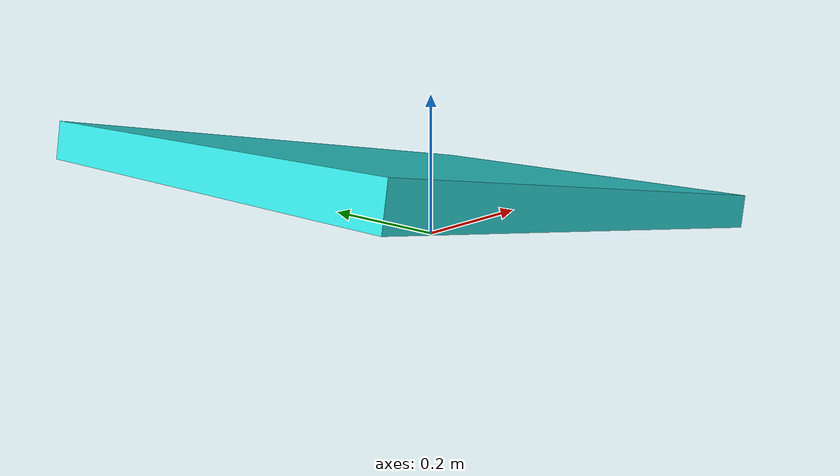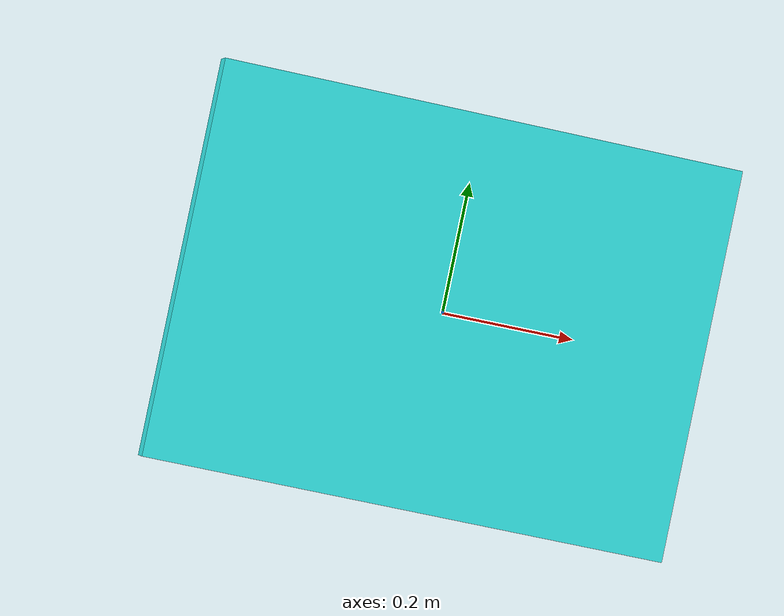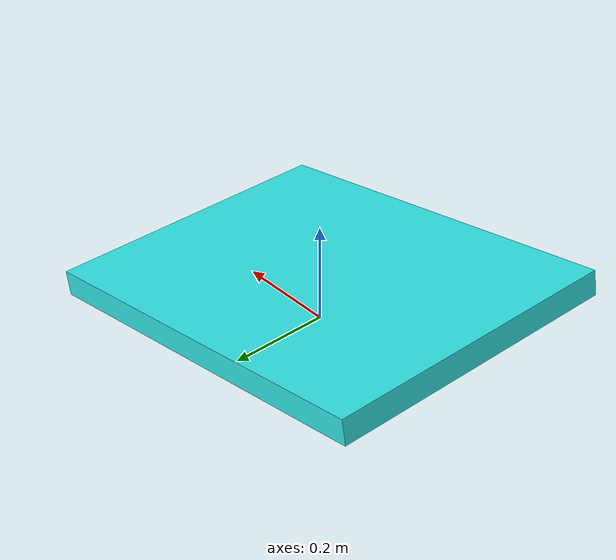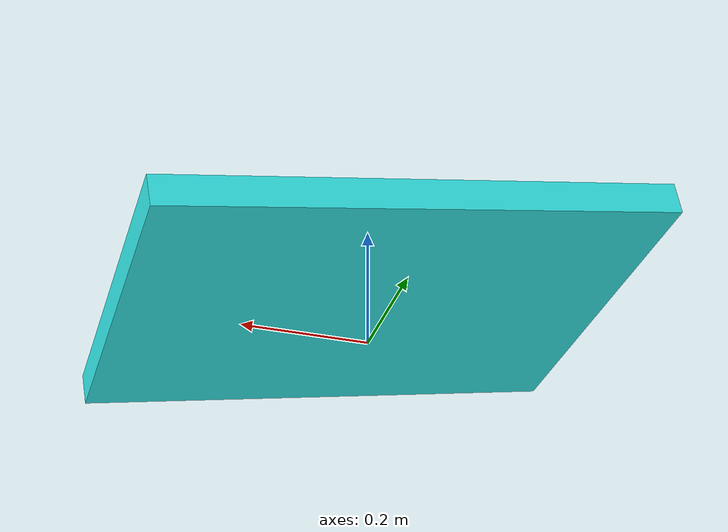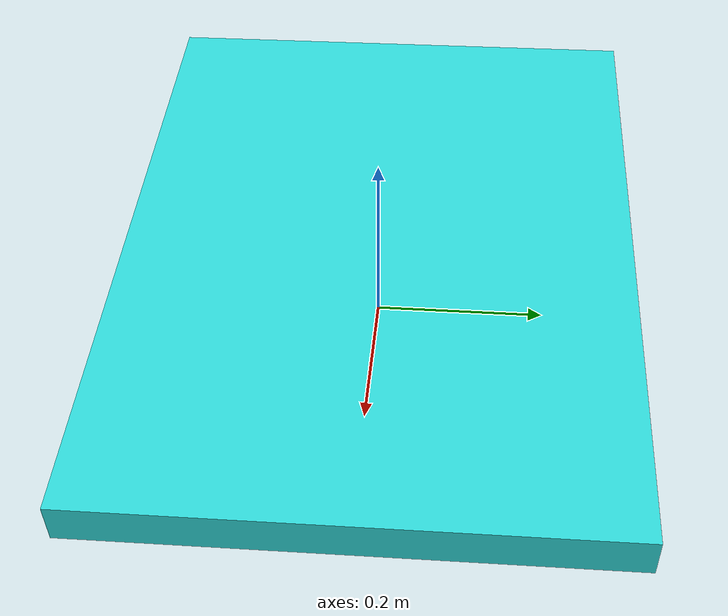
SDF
<?xml version="1.0"?>
<sdf version="1.8">
  <model name="tof_ramp_10deg">
    <static>true</static>
    <link name="link">
      <pose>0 0 0.08 0 0.1745 0</pose>
      <collision name="collision">
        <geometry>
          <box>
            <size>0.80 0.60 0.05</size>
          </box>
        </geometry>
      </collision>
      <visual name="visual">
        <geometry>
          <box>
            <size>0.80 0.60 0.05</size>
          </box>
        </geometry>
        <material>
          <ambient>0.20 0.90 0.90 1</ambient>
          <diffuse>0.20 0.90 0.90 1</diffuse>
        </material>
      </visual>
    </link>
  </model>
</sdf>
